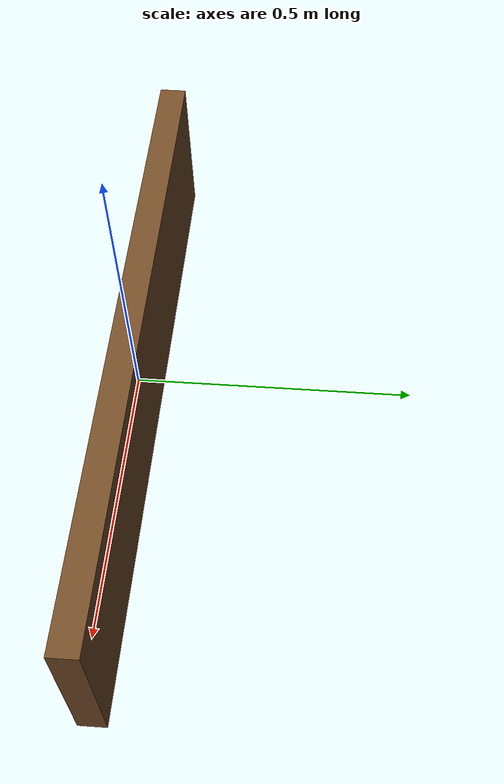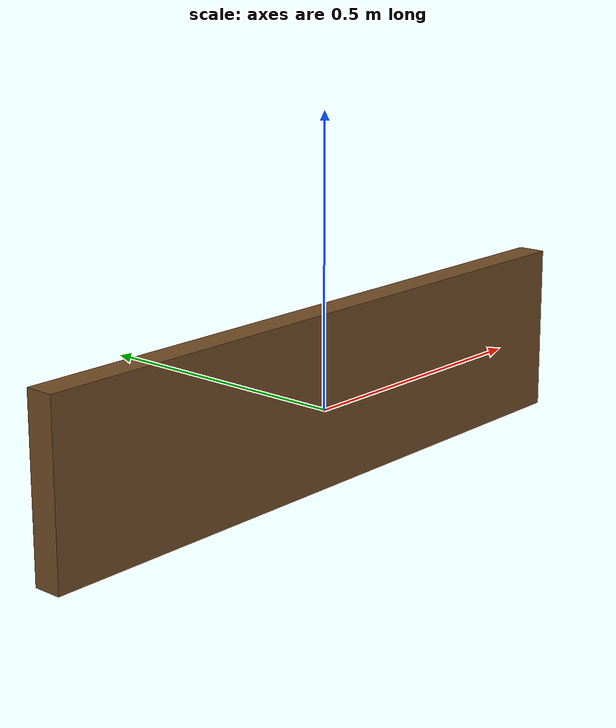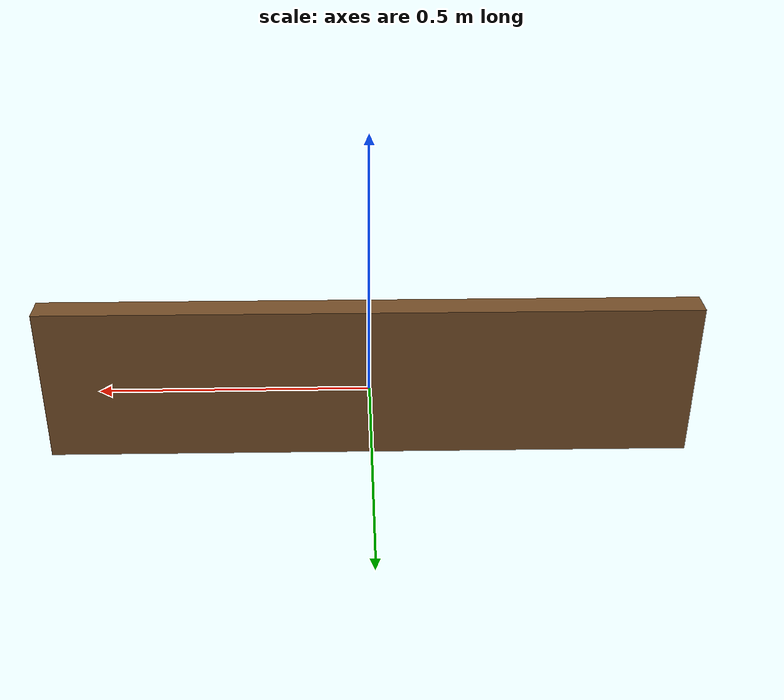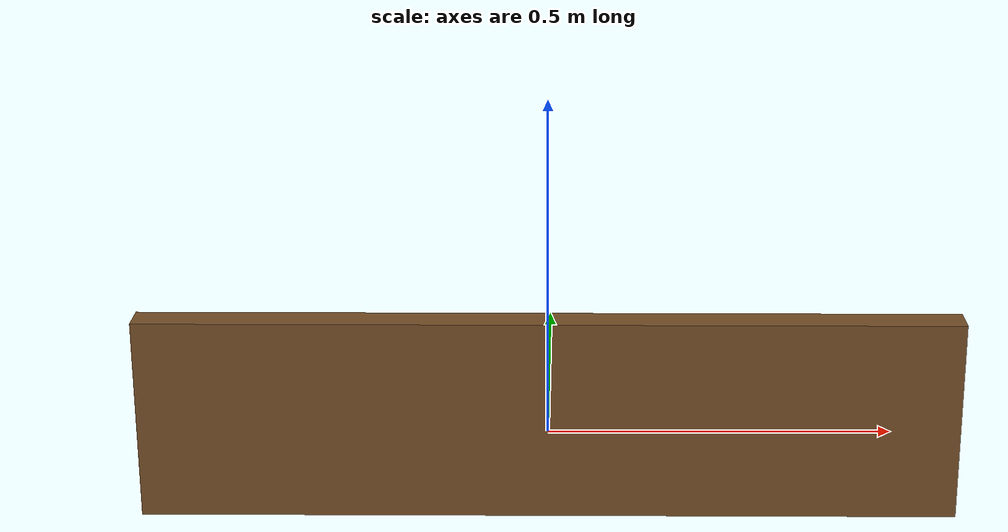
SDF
<?xml version="1.0" ?>
<sdf version="1.10">
    <model name="wall120cm">
        <static>true</static>
        <pose>0 0 0.025 0 0 0</pose> <!-- z=0.025 perquè reposi a terra (meitat del gruix) -->

        <link name="link">
            <collision name="collision">
            <geometry>
                <box>
                <size>1.2 0.05 0.3</size>
                </box>
            </geometry>
            </collision>

            <visual name="visual">
            <geometry>
                <box>
                <size>1.2 0.05 0.3</size>
                </box>
            </geometry>
            <material>
                <ambient>0.45 0.30 0.15 1</ambient>
                <diffuse>0.45 0.30 0.15 1</diffuse>
            </material>
            </visual>
        </link>
    </model>
</sdf>
